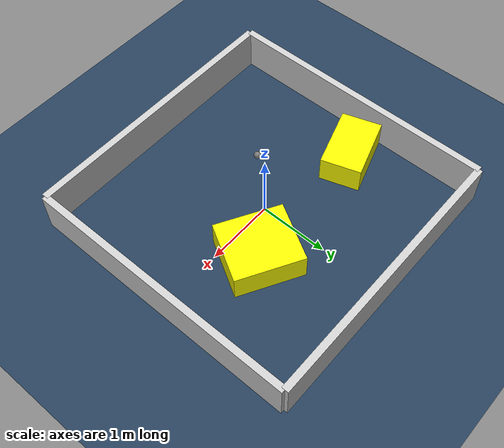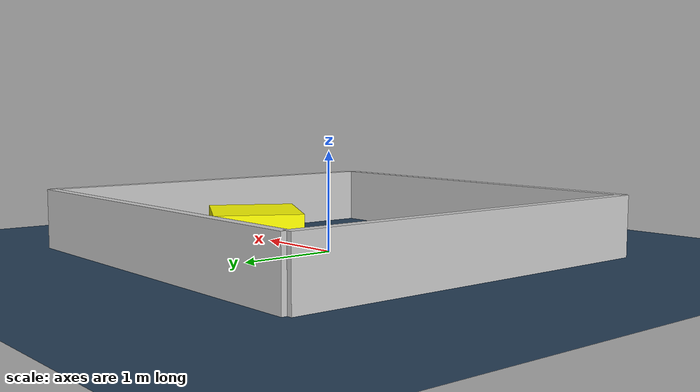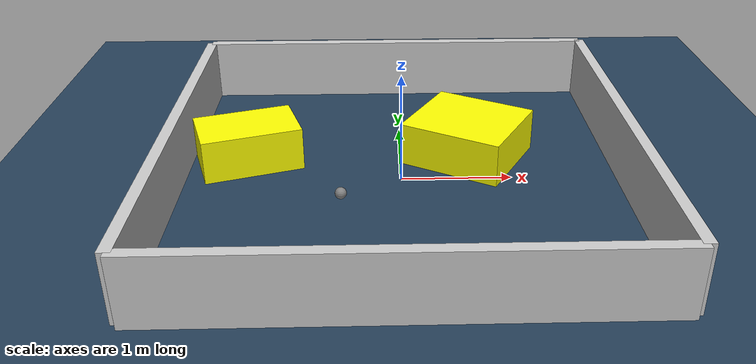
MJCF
<?xml version="1.0" ?>
<mujoco model="generated_environment">
  <option timestep="0.01" integrator="RK4" cone="elliptic"/>
  <default>
    <geom density="1"/>
  </default>
  <asset>
    <texture builtin="gradient" height="3072" rgb1="0.3 0.5 0.7" rgb2="0 0 0" type="skybox" width="512"/>
    <texture builtin="checker" height="300" mark="edge" markrgb="0.8 0.8 0.8" name="groundplane" rgb1="0.2 0.3 0.4" rgb2="0.1 0.2 0.3" type="2d" width="300"/>
    <material name="groundplane" reflectance="0.2" texrepeat="5 5" texture="groundplane" texuniform="true"/>
    <material name="robot" rgba="0.0 1.0 0.0 1"/>
  </asset>
  <worldbody>
    <light dir="0 0 -1" directional="true" pos="0 0 1.5"/>
    <geom condim="4" friction="1.0 0.005 0.001" material="groundplane" name="floor" size="0 0 0.05" type="plane"/>
    <body name="walls">
      <geom name="wall_1" condim="4" pos="-2.0 0.0 0.3" rgba="0.800000011920929 0.800000011920929 0.800000011920929 1.0" size="0.05 2.0 0.3" type="box"/>
      <geom name="wall_2" condim="4" pos="2.0 0.0 0.3" rgba="0.800000011920929 0.800000011920929 0.800000011920929 1.0" size="0.05 2.0 0.3" type="box"/>
      <geom name="wall_3" condim="4" pos="0.0 -2.0 0.3" rgba="0.800000011920929 0.800000011920929 0.800000011920929 1.0" size="2.0 0.05 0.3" type="box"/>
      <geom name="wall_4" condim="4" pos="0.0 2.0 0.3" rgba="0.800000011920929 0.800000011920929 0.800000011920929 1.0" size="2.0 0.05 0.3" type="box"/>
    </body>
    <body name="robot">
      <joint name="joint_x" type="slide" pos="0 0 0" axis="1 0 0"/>
      <joint name="joint_y" type="slide" pos="0 0 0" axis="0 1 0"/>
      <geom name="robot" type="sphere" pos="-0.5207395212153452 -0.5862316655332425 0.2" size="0.05" mass="5." friction="1.0 0.005 0.0001" condim="4"/>
      <site name="sensor_ball"/>
    </body>
    <body name="obstacle_1_movable">
      <geom name="obstacle_1_movable" condim="4" pos="-1.4178847272242652 0.35823659831876453 0.2" euler="0 0 198.00720943317899" friction="1.0 0.005 0.001" rgba="1 1 0 1" size="0.4558048363028172 0.2892565195841717 0.2" type="box" mass="0.1"/>
      <joint type="free"/>
    </body>
    <body name="obstacle_2_movable">
      <geom name="obstacle_2_movable" condim="4" pos="0.6361084789146283 0.4476708619304943 0.2" euler="0 0 60.44997819560121" friction="1.0 0.005 0.001" rgba="1 1 0 1" size="0.43864495062360714 0.48387002617408087 0.2" type="box" mass="0.1"/>
      <joint type="free"/>
    </body>
  </worldbody>
  <actuator>
    <motor name="actuator_x" joint="joint_x" gear="1" ctrlrange="-1 1"/>
    <motor name="actuator_y" joint="joint_y" gear="1" ctrlrange="-1 1"/>
  </actuator>
</mujoco>
